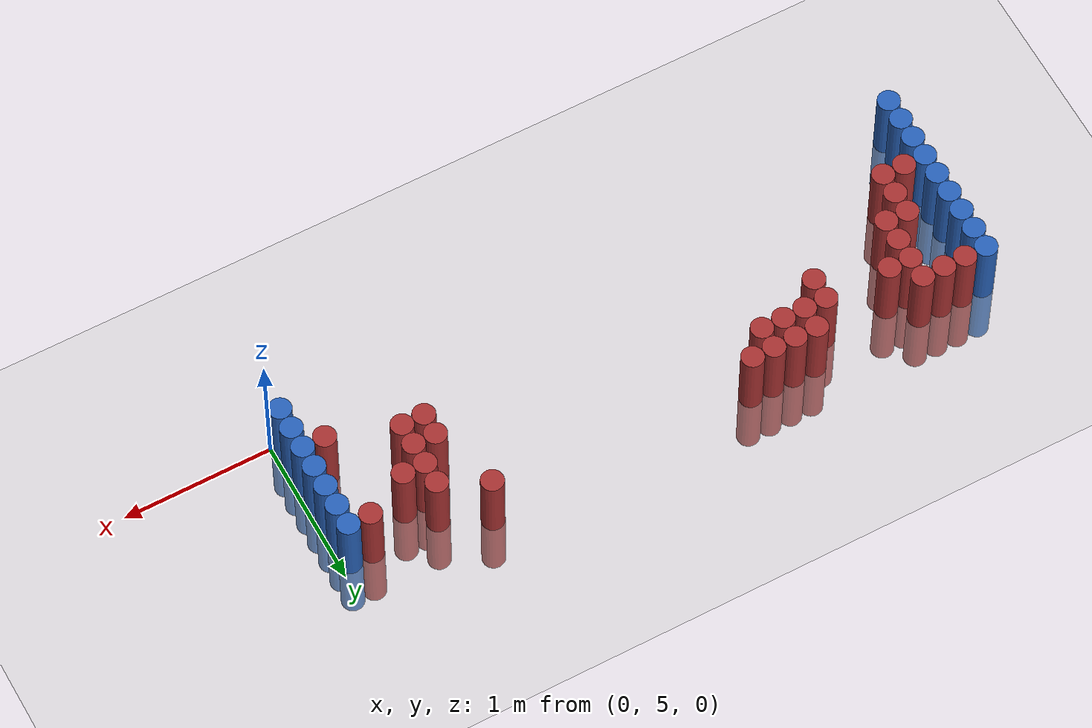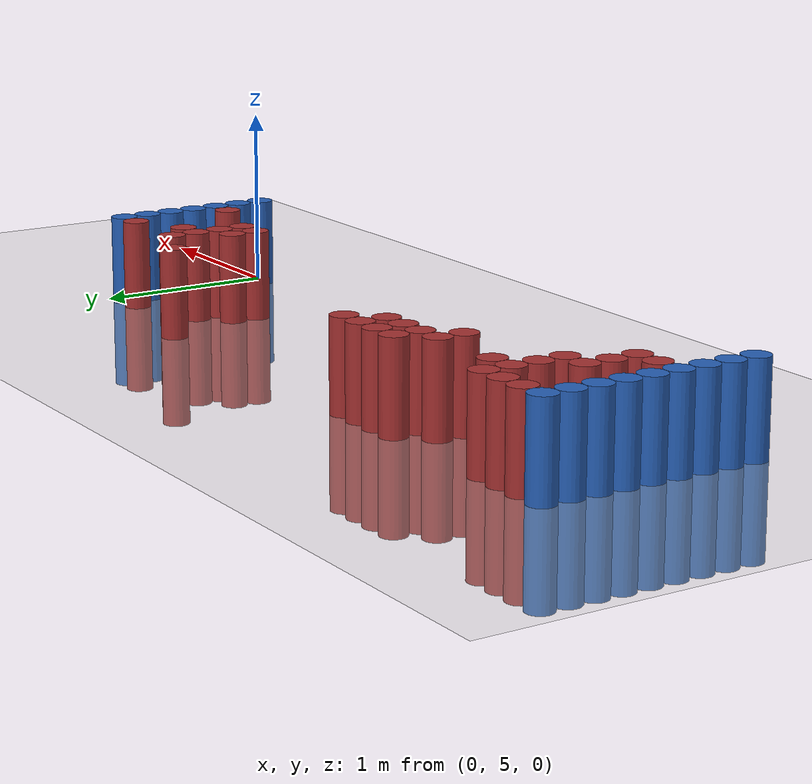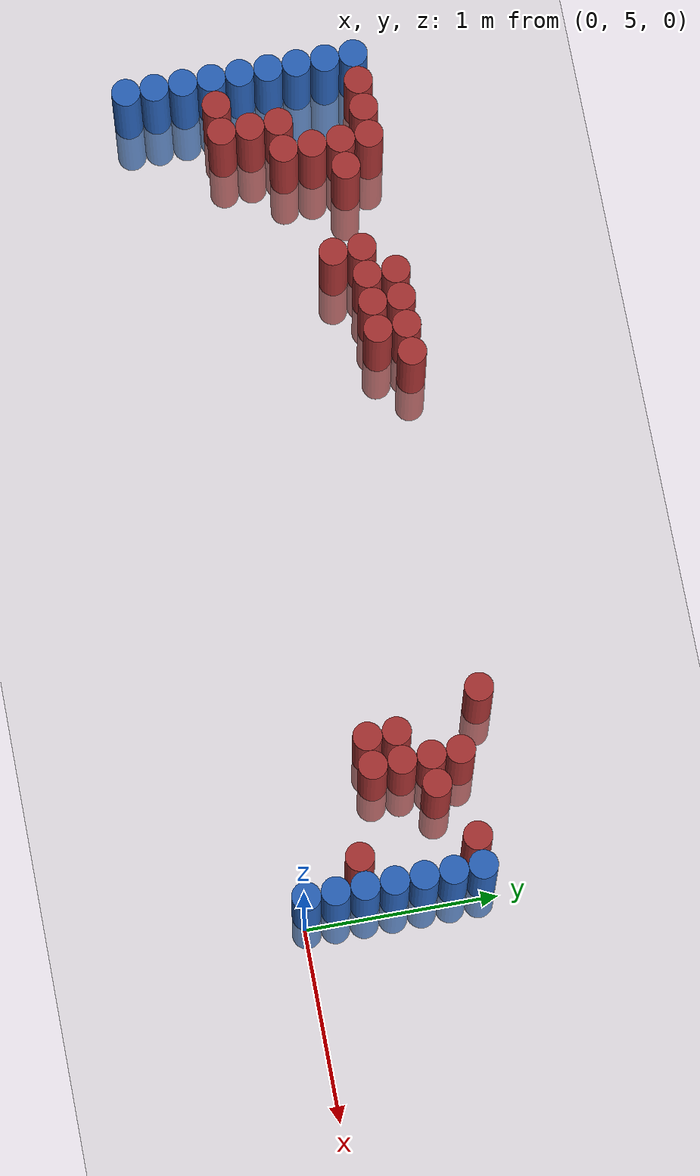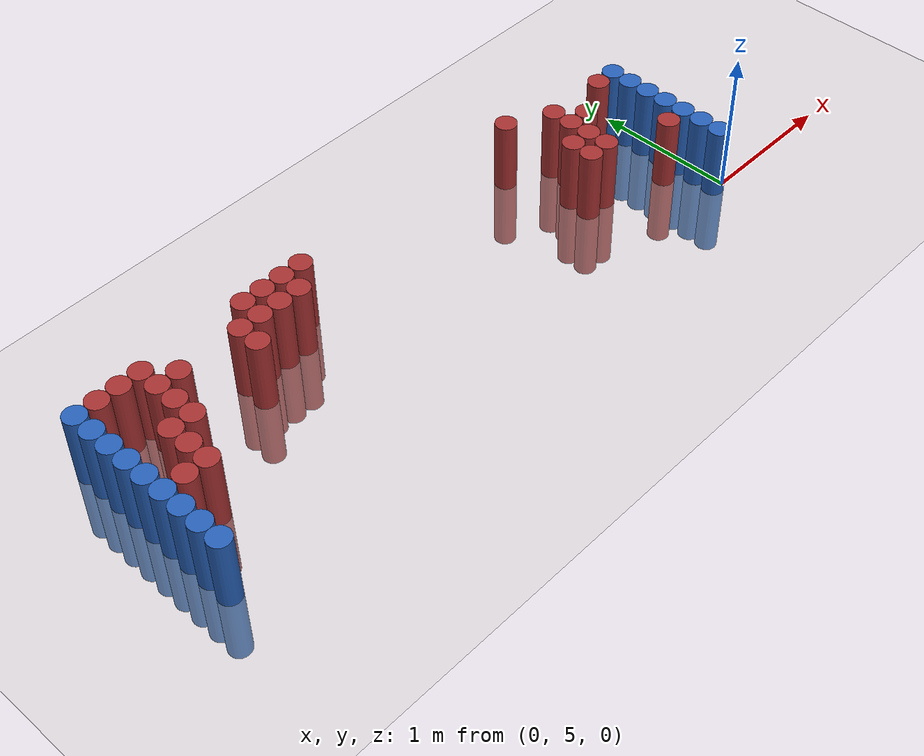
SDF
<sdf version="1.6">
 <world name="default">
  <model name="ground_plane">
   <static>1</static>
   <link name="link">
    <collision name="collision">
     <geometry><plane><normal>0 0 1</normal><size>100 100</size></plane></geometry>
     <surface><friction><ode><mu>100</mu><mu2>50</mu2></ode></friction></surface>
    </collision>
    <visual name="visual">
     <cast_shadows>0</cast_shadows>
     <geometry><plane><normal>0 0 1</normal><size>100 100</size></plane></geometry>
     <material>
      <script><uri>file://media/materials/scripts/gazebo.material</uri><name>Gazebo/Grey</name></script>
     </material>
    </visual>
   </link>
  </model>
  <model name="unit_cylinder_93">
   <static>1</static>
   <pose>-4.425000 4.875000 0.000000 0.000000 0.000000 0.000000</pose>
   <link name="link">
    <inertial>
     <mass>1</mass>
     <inertia><ixx>0.145833</ixx><ixy>0</ixy><ixz>0</ixz><iyy>0.145833</iyy><iyz>0</iyz><izz>0.125</izz></inertia>
    </inertial>
    <collision name="collision">
     <geometry><cylinder><radius>0.075000</radius><length>1</length></cylinder></geometry>
    </collision>
    <visual name="visual">
     <geometry><cylinder><radius>0.075000</radius><length>1</length></cylinder></geometry>
     <material>
      <ambient>0.152000 0.379000 0.720000 1</ambient>
      <diffuse>0.152000 0.379000 0.720000 1</diffuse>
     </material>
     <material>
      <script><name>Gazebo/Grey</name><uri>file://media/materials/scripts/gazebo.material</uri></script>
     </material>
    </visual>
   </link>
  </model>
  <model name="unit_cylinder_94">
   <static>1</static>
   <pose>-0.075000 5.025000 0.000000 0.000000 0.000000 0.000000</pose>
   <link name="link">
    <inertial>
     <mass>1</mass>
     <inertia><ixx>0.145833</ixx><ixy>0</ixy><ixz>0</ixz><iyy>0.145833</iyy><iyz>0</iyz><izz>0.125</izz></inertia>
    </inertial>
    <collision name="collision">
     <geometry><cylinder><radius>0.075000</radius><length>1</length></cylinder></geometry>
    </collision>
    <visual name="visual">
     <geometry><cylinder><radius>0.075000</radius><length>1</length></cylinder></geometry>
     <material>
      <ambient>0.152000 0.379000 0.720000 1</ambient>
      <diffuse>0.152000 0.379000 0.720000 1</diffuse>
     </material>
     <material>
      <script><name>Gazebo/Grey</name><uri>file://media/materials/scripts/gazebo.material</uri></script>
     </material>
    </visual>
   </link>
  </model>
  <model name="unit_cylinder_95">
   <static>1</static>
   <pose>-4.425000 5.025000 0.000000 0.000000 0.000000 0.000000</pose>
   <link name="link">
    <inertial>
     <mass>1</mass>
     <inertia><ixx>0.145833</ixx><ixy>0</ixy><ixz>0</ixz><iyy>0.145833</iyy><iyz>0</iyz><izz>0.125</izz></inertia>
    </inertial>
    <collision name="collision">
     <geometry><cylinder><radius>0.075000</radius><length>1</length></cylinder></geometry>
    </collision>
    <visual name="visual">
     <geometry><cylinder><radius>0.075000</radius><length>1</length></cylinder></geometry>
     <material>
      <ambient>0.152000 0.379000 0.720000 1</ambient>
      <diffuse>0.152000 0.379000 0.720000 1</diffuse>
     </material>
     <material>
      <script><name>Gazebo/Grey</name><uri>file://media/materials/scripts/gazebo.material</uri></script>
     </material>
    </visual>
   </link>
  </model>
  <model name="unit_cylinder_96">
   <static>1</static>
   <pose>-4.425000 5.175000 0.000000 0.000000 0.000000 0.000000</pose>
   <link name="link">
    <inertial>
     <mass>1</mass>
     <inertia><ixx>0.145833</ixx><ixy>0</ixy><ixz>0</ixz><iyy>0.145833</iyy><iyz>0</iyz><izz>0.125</izz></inertia>
    </inertial>
    <collision name="collision">
     <geometry><cylinder><radius>0.075000</radius><length>1</length></cylinder></geometry>
    </collision>
    <visual name="visual">
     <geometry><cylinder><radius>0.075000</radius><length>1</length></cylinder></geometry>
     <material>
      <ambient>0.152000 0.379000 0.720000 1</ambient>
      <diffuse>0.152000 0.379000 0.720000 1</diffuse>
     </material>
     <material>
      <script><name>Gazebo/Grey</name><uri>file://media/materials/scripts/gazebo.material</uri></script>
     </material>
    </visual>
   </link>
  </model>
  <model name="unit_cylinder_97">
   <static>1</static>
   <pose>-4.425000 5.325000 0.000000 0.000000 0.000000 0.000000</pose>
   <link name="link">
    <inertial>
     <mass>1</mass>
     <inertia><ixx>0.145833</ixx><ixy>0</ixy><ixz>0</ixz><iyy>0.145833</iyy><iyz>0</iyz><izz>0.125</izz></inertia>
    </inertial>
    <collision name="collision">
     <geometry><cylinder><radius>0.075000</radius><length>1</length></cylinder></geometry>
    </collision>
    <visual name="visual">
     <geometry><cylinder><radius>0.075000</radius><length>1</length></cylinder></geometry>
     <material>
      <ambient>0.152000 0.379000 0.720000 1</ambient>
      <diffuse>0.152000 0.379000 0.720000 1</diffuse>
     </material>
     <material>
      <script><name>Gazebo/Grey</name><uri>file://media/materials/scripts/gazebo.material</uri></script>
     </material>
    </visual>
   </link>
  </model>
  <model name="unit_cylinder_98">
   <static>1</static>
   <pose>-4.425000 5.475000 0.000000 0.000000 0.000000 0.000000</pose>
   <link name="link">
    <inertial>
     <mass>1</mass>
     <inertia><ixx>0.145833</ixx><ixy>0</ixy><ixz>0</ixz><iyy>0.145833</iyy><iyz>0</iyz><izz>0.125</izz></inertia>
    </inertial>
    <collision name="collision">
     <geometry><cylinder><radius>0.075000</radius><length>1</length></cylinder></geometry>
    </collision>
    <visual name="visual">
     <geometry><cylinder><radius>0.075000</radius><length>1</length></cylinder></geometry>
     <material>
      <ambient>0.152000 0.379000 0.720000 1</ambient>
      <diffuse>0.152000 0.379000 0.720000 1</diffuse>
     </material>
     <material>
      <script><name>Gazebo/Grey</name><uri>file://media/materials/scripts/gazebo.material</uri></script>
     </material>
    </visual>
   </link>
  </model>
  <model name="unit_cylinder_99">
   <static>1</static>
   <pose>-4.425000 5.625000 0.000000 0.000000 0.000000 0.000000</pose>
   <link name="link">
    <inertial>
     <mass>1</mass>
     <inertia><ixx>0.145833</ixx><ixy>0</ixy><ixz>0</ixz><iyy>0.145833</iyy><iyz>0</iyz><izz>0.125</izz></inertia>
    </inertial>
    <collision name="collision">
     <geometry><cylinder><radius>0.075000</radius><length>1</length></cylinder></geometry>
    </collision>
    <visual name="visual">
     <geometry><cylinder><radius>0.075000</radius><length>1</length></cylinder></geometry>
     <material>
      <ambient>0.152000 0.379000 0.720000 1</ambient>
      <diffuse>0.152000 0.379000 0.720000 1</diffuse>
     </material>
     <material>
      <script><name>Gazebo/Grey</name><uri>file://media/materials/scripts/gazebo.material</uri></script>
     </material>
    </visual>
   </link>
  </model>
  <model name="unit_cylinder_100">
   <static>1</static>
   <pose>-4.425000 5.775000 0.000000 0.000000 0.000000 0.000000</pose>
   <link name="link">
    <inertial>
     <mass>1</mass>
     <inertia><ixx>0.145833</ixx><ixy>0</ixy><ixz>0</ixz><iyy>0.145833</iyy><iyz>0</iyz><izz>0.125</izz></inertia>
    </inertial>
    <collision name="collision">
     <geometry><cylinder><radius>0.075000</radius><length>1</length></cylinder></geometry>
    </collision>
    <visual name="visual">
     <geometry><cylinder><radius>0.075000</radius><length>1</length></cylinder></geometry>
     <material>
      <ambient>0.152000 0.379000 0.720000 1</ambient>
      <diffuse>0.152000 0.379000 0.720000 1</diffuse>
     </material>
     <material>
      <script><name>Gazebo/Grey</name><uri>file://media/materials/scripts/gazebo.material</uri></script>
     </material>
    </visual>
   </link>
  </model>
  <model name="unit_cylinder_101">
   <static>1</static>
   <pose>-4.425000 5.925000 0.000000 0.000000 0.000000 0.000000</pose>
   <link name="link">
    <inertial>
     <mass>1</mass>
     <inertia><ixx>0.145833</ixx><ixy>0</ixy><ixz>0</ixz><iyy>0.145833</iyy><iyz>0</iyz><izz>0.125</izz></inertia>
    </inertial>
    <collision name="collision">
     <geometry><cylinder><radius>0.075000</radius><length>1</length></cylinder></geometry>
    </collision>
    <visual name="visual">
     <geometry><cylinder><radius>0.075000</radius><length>1</length></cylinder></geometry>
     <material>
      <ambient>0.152000 0.379000 0.720000 1</ambient>
      <diffuse>0.152000 0.379000 0.720000 1</diffuse>
     </material>
     <material>
      <script><name>Gazebo/Grey</name><uri>file://media/materials/scripts/gazebo.material</uri></script>
     </material>
    </visual>
   </link>
  </model>
  <model name="unit_cylinder_102">
   <static>1</static>
   <pose>-4.425000 6.075000 0.000000 0.000000 0.000000 0.000000</pose>
   <link name="link">
    <inertial>
     <mass>1</mass>
     <inertia><ixx>0.145833</ixx><ixy>0</ixy><ixz>0</ixz><iyy>0.145833</iyy><iyz>0</iyz><izz>0.125</izz></inertia>
    </inertial>
    <collision name="collision">
     <geometry><cylinder><radius>0.075000</radius><length>1</length></cylinder></geometry>
    </collision>
    <visual name="visual">
     <geometry><cylinder><radius>0.075000</radius><length>1</length></cylinder></geometry>
     <material>
      <ambient>0.152000 0.379000 0.720000 1</ambient>
      <diffuse>0.152000 0.379000 0.720000 1</diffuse>
     </material>
     <material>
      <script><name>Gazebo/Grey</name><uri>file://media/materials/scripts/gazebo.material</uri></script>
     </material>
    </visual>
   </link>
  </model>
  <model name="unit_cylinder_126">
   <static>1</static>
   <pose>-4.275000 5.325000 0.000000 0.000000 0.000000 0.000000</pose>
   <link name="link">
    <inertial>
     <mass>1</mass>
     <inertia><ixx>0.145833</ixx><ixy>0</ixy><ixz>0</ixz><iyy>0.145833</iyy><iyz>0</iyz><izz>0.125</izz></inertia>
    </inertial>
    <collision name="collision">
     <geometry><cylinder><radius>0.075000</radius><length>1</length></cylinder></geometry>
    </collision>
    <visual name="visual">
     <geometry><cylinder><radius>0.075000</radius><length>1</length></cylinder></geometry>
     <material>
      <ambient>0.648000 0.192000 0.192000 1</ambient>
      <diffuse>0.648000 0.192000 0.192000 1</diffuse>
     </material>
     <material>
      <script><name>Gazebo/Grey</name><uri>file://media/materials/scripts/gazebo.material</uri></script>
     </material>
    </visual>
   </link>
  </model>
  <model name="unit_cylinder_127">
   <static>1</static>
   <pose>-4.275000 6.075000 0.000000 0.000000 0.000000 0.000000</pose>
   <link name="link">
    <inertial>
     <mass>1</mass>
     <inertia><ixx>0.145833</ixx><ixy>0</ixy><ixz>0</ixz><iyy>0.145833</iyy><iyz>0</iyz><izz>0.125</izz></inertia>
    </inertial>
    <collision name="collision">
     <geometry><cylinder><radius>0.075000</radius><length>1</length></cylinder></geometry>
    </collision>
    <visual name="visual">
     <geometry><cylinder><radius>0.075000</radius><length>1</length></cylinder></geometry>
     <material>
      <ambient>0.648000 0.192000 0.192000 1</ambient>
      <diffuse>0.648000 0.192000 0.192000 1</diffuse>
     </material>
     <material>
      <script><name>Gazebo/Grey</name><uri>file://media/materials/scripts/gazebo.material</uri></script>
     </material>
    </visual>
   </link>
  </model>
  <model name="unit_cylinder_134">
   <static>1</static>
   <pose>-4.125000 5.325000 0.000000 0.000000 0.000000 0.000000</pose>
   <link name="link">
    <inertial>
     <mass>1</mass>
     <inertia><ixx>0.145833</ixx><ixy>0</ixy><ixz>0</ixz><iyy>0.145833</iyy><iyz>0</iyz><izz>0.125</izz></inertia>
    </inertial>
    <collision name="collision">
     <geometry><cylinder><radius>0.075000</radius><length>1</length></cylinder></geometry>
    </collision>
    <visual name="visual">
     <geometry><cylinder><radius>0.075000</radius><length>1</length></cylinder></geometry>
     <material>
      <ambient>0.648000 0.192000 0.192000 1</ambient>
      <diffuse>0.648000 0.192000 0.192000 1</diffuse>
     </material>
     <material>
      <script><name>Gazebo/Grey</name><uri>file://media/materials/scripts/gazebo.material</uri></script>
     </material>
    </visual>
   </link>
  </model>
  <model name="unit_cylinder_135">
   <static>1</static>
   <pose>-4.125000 5.475000 0.000000 0.000000 0.000000 0.000000</pose>
   <link name="link">
    <inertial>
     <mass>1</mass>
     <inertia><ixx>0.145833</ixx><ixy>0</ixy><ixz>0</ixz><iyy>0.145833</iyy><iyz>0</iyz><izz>0.125</izz></inertia>
    </inertial>
    <collision name="collision">
     <geometry><cylinder><radius>0.075000</radius><length>1</length></cylinder></geometry>
    </collision>
    <visual name="visual">
     <geometry><cylinder><radius>0.075000</radius><length>1</length></cylinder></geometry>
     <material>
      <ambient>0.648000 0.192000 0.192000 1</ambient>
      <diffuse>0.648000 0.192000 0.192000 1</diffuse>
     </material>
     <material>
      <script><name>Gazebo/Grey</name><uri>file://media/materials/scripts/gazebo.material</uri></script>
     </material>
    </visual>
   </link>
  </model>
  <model name="unit_cylinder_136">
   <static>1</static>
   <pose>-4.125000 5.625000 0.000000 0.000000 0.000000 0.000000</pose>
   <link name="link">
    <inertial>
     <mass>1</mass>
     <inertia><ixx>0.145833</ixx><ixy>0</ixy><ixz>0</ixz><iyy>0.145833</iyy><iyz>0</iyz><izz>0.125</izz></inertia>
    </inertial>
    <collision name="collision">
     <geometry><cylinder><radius>0.075000</radius><length>1</length></cylinder></geometry>
    </collision>
    <visual name="visual">
     <geometry><cylinder><radius>0.075000</radius><length>1</length></cylinder></geometry>
     <material>
      <ambient>0.648000 0.192000 0.192000 1</ambient>
      <diffuse>0.648000 0.192000 0.192000 1</diffuse>
     </material>
     <material>
      <script><name>Gazebo/Grey</name><uri>file://media/materials/scripts/gazebo.material</uri></script>
     </material>
    </visual>
   </link>
  </model>
  <model name="unit_cylinder_137">
   <static>1</static>
   <pose>-4.125000 6.075000 0.000000 0.000000 0.000000 0.000000</pose>
   <link name="link">
    <inertial>
     <mass>1</mass>
     <inertia><ixx>0.145833</ixx><ixy>0</ixy><ixz>0</ixz><iyy>0.145833</iyy><iyz>0</iyz><izz>0.125</izz></inertia>
    </inertial>
    <collision name="collision">
     <geometry><cylinder><radius>0.075000</radius><length>1</length></cylinder></geometry>
    </collision>
    <visual name="visual">
     <geometry><cylinder><radius>0.075000</radius><length>1</length></cylinder></geometry>
     <material>
      <ambient>0.648000 0.192000 0.192000 1</ambient>
      <diffuse>0.648000 0.192000 0.192000 1</diffuse>
     </material>
     <material>
      <script><name>Gazebo/Grey</name><uri>file://media/materials/scripts/gazebo.material</uri></script>
     </material>
    </visual>
   </link>
  </model>
  <model name="unit_cylinder_142">
   <static>1</static>
   <pose>-3.975000 5.625000 0.000000 0.000000 0.000000 0.000000</pose>
   <link name="link">
    <inertial>
     <mass>1</mass>
     <inertia><ixx>0.145833</ixx><ixy>0</ixy><ixz>0</ixz><iyy>0.145833</iyy><iyz>0</iyz><izz>0.125</izz></inertia>
    </inertial>
    <collision name="collision">
     <geometry><cylinder><radius>0.075000</radius><length>1</length></cylinder></geometry>
    </collision>
    <visual name="visual">
     <geometry><cylinder><radius>0.075000</radius><length>1</length></cylinder></geometry>
     <material>
      <ambient>0.648000 0.192000 0.192000 1</ambient>
      <diffuse>0.648000 0.192000 0.192000 1</diffuse>
     </material>
     <material>
      <script><name>Gazebo/Grey</name><uri>file://media/materials/scripts/gazebo.material</uri></script>
     </material>
    </visual>
   </link>
  </model>
  <model name="unit_cylinder_143">
   <static>1</static>
   <pose>-3.975000 5.775000 0.000000 0.000000 0.000000 0.000000</pose>
   <link name="link">
    <inertial>
     <mass>1</mass>
     <inertia><ixx>0.145833</ixx><ixy>0</ixy><ixz>0</ixz><iyy>0.145833</iyy><iyz>0</iyz><izz>0.125</izz></inertia>
    </inertial>
    <collision name="collision">
     <geometry><cylinder><radius>0.075000</radius><length>1</length></cylinder></geometry>
    </collision>
    <visual name="visual">
     <geometry><cylinder><radius>0.075000</radius><length>1</length></cylinder></geometry>
     <material>
      <ambient>0.648000 0.192000 0.192000 1</ambient>
      <diffuse>0.648000 0.192000 0.192000 1</diffuse>
     </material>
     <material>
      <script><name>Gazebo/Grey</name><uri>file://media/materials/scripts/gazebo.material</uri></script>
     </material>
    </visual>
   </link>
  </model>
  <model name="unit_cylinder_144">
   <static>1</static>
   <pose>-3.975000 5.925000 0.000000 0.000000 0.000000 0.000000</pose>
   <link name="link">
    <inertial>
     <mass>1</mass>
     <inertia><ixx>0.145833</ixx><ixy>0</ixy><ixz>0</ixz><iyy>0.145833</iyy><iyz>0</iyz><izz>0.125</izz></inertia>
    </inertial>
    <collision name="collision">
     <geometry><cylinder><radius>0.075000</radius><length>1</length></cylinder></geometry>
    </collision>
    <visual name="visual">
     <geometry><cylinder><radius>0.075000</radius><length>1</length></cylinder></geometry>
     <material>
      <ambient>0.648000 0.192000 0.192000 1</ambient>
      <diffuse>0.648000 0.192000 0.192000 1</diffuse>
     </material>
     <material>
      <script><name>Gazebo/Grey</name><uri>file://media/materials/scripts/gazebo.material</uri></script>
     </material>
    </visual>
   </link>
  </model>
  <model name="unit_cylinder_145">
   <static>1</static>
   <pose>-3.975000 6.075000 0.000000 0.000000 0.000000 0.000000</pose>
   <link name="link">
    <inertial>
     <mass>1</mass>
     <inertia><ixx>0.145833</ixx><ixy>0</ixy><ixz>0</ixz><iyy>0.145833</iyy><iyz>0</iyz><izz>0.125</izz></inertia>
    </inertial>
    <collision name="collision">
     <geometry><cylinder><radius>0.075000</radius><length>1</length></cylinder></geometry>
    </collision>
    <visual name="visual">
     <geometry><cylinder><radius>0.075000</radius><length>1</length></cylinder></geometry>
     <material>
      <ambient>0.648000 0.192000 0.192000 1</ambient>
      <diffuse>0.648000 0.192000 0.192000 1</diffuse>
     </material>
     <material>
      <script><name>Gazebo/Grey</name><uri>file://media/materials/scripts/gazebo.material</uri></script>
     </material>
    </visual>
   </link>
  </model>
  <model name="unit_cylinder_148">
   <static>1</static>
   <pose>-3.825000 5.925000 0.000000 0.000000 0.000000 0.000000</pose>
   <link name="link">
    <inertial>
     <mass>1</mass>
     <inertia><ixx>0.145833</ixx><ixy>0</ixy><ixz>0</ixz><iyy>0.145833</iyy><iyz>0</iyz><izz>0.125</izz></inertia>
    </inertial>
    <collision name="collision">
     <geometry><cylinder><radius>0.075000</radius><length>1</length></cylinder></geometry>
    </collision>
    <visual name="visual">
     <geometry><cylinder><radius>0.075000</radius><length>1</length></cylinder></geometry>
     <material>
      <ambient>0.648000 0.192000 0.192000 1</ambient>
      <diffuse>0.648000 0.192000 0.192000 1</diffuse>
     </material>
     <material>
      <script><name>Gazebo/Grey</name><uri>file://media/materials/scripts/gazebo.material</uri></script>
     </material>
    </visual>
   </link>
  </model>
  <model name="unit_cylinder_154">
   <static>1</static>
   <pose>-3.375000 5.775000 0.000000 0.000000 0.000000 0.000000</pose>
   <link name="link">
    <inertial>
     <mass>1</mass>
     <inertia><ixx>0.145833</ixx><ixy>0</ixy><ixz>0</ixz><iyy>0.145833</iyy><iyz>0</iyz><izz>0.125</izz></inertia>
    </inertial>
    <collision name="collision">
     <geometry><cylinder><radius>0.075000</radius><length>1</length></cylinder></geometry>
    </collision>
    <visual name="visual">
     <geometry><cylinder><radius>0.075000</radius><length>1</length></cylinder></geometry>
     <material>
      <ambient>0.648000 0.192000 0.192000 1</ambient>
      <diffuse>0.648000 0.192000 0.192000 1</diffuse>
     </material>
     <material>
      <script><name>Gazebo/Grey</name><uri>file://media/materials/scripts/gazebo.material</uri></script>
     </material>
    </visual>
   </link>
  </model>
  <model name="unit_cylinder_155">
   <static>1</static>
   <pose>-3.375000 5.925000 0.000000 0.000000 0.000000 0.000000</pose>
   <link name="link">
    <inertial>
     <mass>1</mass>
     <inertia><ixx>0.145833</ixx><ixy>0</ixy><ixz>0</ixz><iyy>0.145833</iyy><iyz>0</iyz><izz>0.125</izz></inertia>
    </inertial>
    <collision name="collision">
     <geometry><cylinder><radius>0.075000</radius><length>1</length></cylinder></geometry>
    </collision>
    <visual name="visual">
     <geometry><cylinder><radius>0.075000</radius><length>1</length></cylinder></geometry>
     <material>
      <ambient>0.648000 0.192000 0.192000 1</ambient>
      <diffuse>0.648000 0.192000 0.192000 1</diffuse>
     </material>
     <material>
      <script><name>Gazebo/Grey</name><uri>file://media/materials/scripts/gazebo.material</uri></script>
     </material>
    </visual>
   </link>
  </model>
  <model name="unit_cylinder_156">
   <static>1</static>
   <pose>-3.225000 5.925000 0.000000 0.000000 0.000000 0.000000</pose>
   <link name="link">
    <inertial>
     <mass>1</mass>
     <inertia><ixx>0.145833</ixx><ixy>0</ixy><ixz>0</ixz><iyy>0.145833</iyy><iyz>0</iyz><izz>0.125</izz></inertia>
    </inertial>
    <collision name="collision">
     <geometry><cylinder><radius>0.075000</radius><length>1</length></cylinder></geometry>
    </collision>
    <visual name="visual">
     <geometry><cylinder><radius>0.075000</radius><length>1</length></cylinder></geometry>
     <material>
      <ambient>0.648000 0.192000 0.192000 1</ambient>
      <diffuse>0.648000 0.192000 0.192000 1</diffuse>
     </material>
     <material>
      <script><name>Gazebo/Grey</name><uri>file://media/materials/scripts/gazebo.material</uri></script>
     </material>
    </visual>
   </link>
  </model>
  <model name="unit_cylinder_157">
   <static>1</static>
   <pose>-3.225000 6.075000 0.000000 0.000000 0.000000 0.000000</pose>
   <link name="link">
    <inertial>
     <mass>1</mass>
     <inertia><ixx>0.145833</ixx><ixy>0</ixy><ixz>0</ixz><iyy>0.145833</iyy><iyz>0</iyz><izz>0.125</izz></inertia>
    </inertial>
    <collision name="collision">
     <geometry><cylinder><radius>0.075000</radius><length>1</length></cylinder></geometry>
    </collision>
    <visual name="visual">
     <geometry><cylinder><radius>0.075000</radius><length>1</length></cylinder></geometry>
     <material>
      <ambient>0.648000 0.192000 0.192000 1</ambient>
      <diffuse>0.648000 0.192000 0.192000 1</diffuse>
     </material>
     <material>
      <script><name>Gazebo/Grey</name><uri>file://media/materials/scripts/gazebo.material</uri></script>
     </material>
    </visual>
   </link>
  </model>
  <model name="unit_cylinder_159">
   <static>1</static>
   <pose>-3.075000 5.925000 0.000000 0.000000 0.000000 0.000000</pose>
   <link name="link">
    <inertial>
     <mass>1</mass>
     <inertia><ixx>0.145833</ixx><ixy>0</ixy><ixz>0</ixz><iyy>0.145833</iyy><iyz>0</iyz><izz>0.125</izz></inertia>
    </inertial>
    <collision name="collision">
     <geometry><cylinder><radius>0.075000</radius><length>1</length></cylinder></geometry>
    </collision>
    <visual name="visual">
     <geometry><cylinder><radius>0.075000</radius><length>1</length></cylinder></geometry>
     <material>
      <ambient>0.648000 0.192000 0.192000 1</ambient>
      <diffuse>0.648000 0.192000 0.192000 1</diffuse>
     </material>
     <material>
      <script><name>Gazebo/Grey</name><uri>file://media/materials/scripts/gazebo.material</uri></script>
     </material>
    </visual>
   </link>
  </model>
  <model name="unit_cylinder_160">
   <static>1</static>
   <pose>-3.075000 6.075000 0.000000 0.000000 0.000000 0.000000</pose>
   <link name="link">
    <inertial>
     <mass>1</mass>
     <inertia><ixx>0.145833</ixx><ixy>0</ixy><ixz>0</ixz><iyy>0.145833</iyy><iyz>0</iyz><izz>0.125</izz></inertia>
    </inertial>
    <collision name="collision">
     <geometry><cylinder><radius>0.075000</radius><length>1</length></cylinder></geometry>
    </collision>
    <visual name="visual">
     <geometry><cylinder><radius>0.075000</radius><length>1</length></cylinder></geometry>
     <material>
      <ambient>0.648000 0.192000 0.192000 1</ambient>
      <diffuse>0.648000 0.192000 0.192000 1</diffuse>
     </material>
     <material>
      <script><name>Gazebo/Grey</name><uri>file://media/materials/scripts/gazebo.material</uri></script>
     </material>
    </visual>
   </link>
  </model>
  <model name="unit_cylinder_164">
   <static>1</static>
   <pose>-2.925000 5.925000 0.000000 0.000000 0.000000 0.000000</pose>
   <link name="link">
    <inertial>
     <mass>1</mass>
     <inertia><ixx>0.145833</ixx><ixy>0</ixy><ixz>0</ixz><iyy>0.145833</iyy><iyz>0</iyz><izz>0.125</izz></inertia>
    </inertial>
    <collision name="collision">
     <geometry><cylinder><radius>0.075000</radius><length>1</length></cylinder></geometry>
    </collision>
    <visual name="visual">
     <geometry><cylinder><radius>0.075000</radius><length>1</length></cylinder></geometry>
     <material>
      <ambient>0.648000 0.192000 0.192000 1</ambient>
      <diffuse>0.648000 0.192000 0.192000 1</diffuse>
     </material>
     <material>
      <script><name>Gazebo/Grey</name><uri>file://media/materials/scripts/gazebo.material</uri></script>
     </material>
    </visual>
   </link>
  </model>
  <model name="unit_cylinder_165">
   <static>1</static>
   <pose>-2.925000 6.075000 0.000000 0.000000 0.000000 0.000000</pose>
   <link name="link">
    <inertial>
     <mass>1</mass>
     <inertia><ixx>0.145833</ixx><ixy>0</ixy><ixz>0</ixz><iyy>0.145833</iyy><iyz>0</iyz><izz>0.125</izz></inertia>
    </inertial>
    <collision name="collision">
     <geometry><cylinder><radius>0.075000</radius><length>1</length></cylinder></geometry>
    </collision>
    <visual name="visual">
     <geometry><cylinder><radius>0.075000</radius><length>1</length></cylinder></geometry>
     <material>
      <ambient>0.648000 0.192000 0.192000 1</ambient>
      <diffuse>0.648000 0.192000 0.192000 1</diffuse>
     </material>
     <material>
      <script><name>Gazebo/Grey</name><uri>file://media/materials/scripts/gazebo.material</uri></script>
     </material>
    </visual>
   </link>
  </model>
  <model name="unit_cylinder_169">
   <static>1</static>
   <pose>-2.775000 6.075000 0.000000 0.000000 0.000000 0.000000</pose>
   <link name="link">
    <inertial>
     <mass>1</mass>
     <inertia><ixx>0.145833</ixx><ixy>0</ixy><ixz>0</ixz><iyy>0.145833</iyy><iyz>0</iyz><izz>0.125</izz></inertia>
    </inertial>
    <collision name="collision">
     <geometry><cylinder><radius>0.075000</radius><length>1</length></cylinder></geometry>
    </collision>
    <visual name="visual">
     <geometry><cylinder><radius>0.075000</radius><length>1</length></cylinder></geometry>
     <material>
      <ambient>0.648000 0.192000 0.192000 1</ambient>
      <diffuse>0.648000 0.192000 0.192000 1</diffuse>
     </material>
     <material>
      <script><name>Gazebo/Grey</name><uri>file://media/materials/scripts/gazebo.material</uri></script>
     </material>
    </visual>
   </link>
  </model>
  <model name="unit_cylinder_178">
   <static>1</static>
   <pose>-0.975000 6.075000 0.000000 0.000000 0.000000 0.000000</pose>
   <link name="link">
    <inertial>
     <mass>1</mass>
     <inertia><ixx>0.145833</ixx><ixy>0</ixy><ixz>0</ixz><iyy>0.145833</iyy><iyz>0</iyz><izz>0.125</izz></inertia>
    </inertial>
    <collision name="collision">
     <geometry><cylinder><radius>0.075000</radius><length>1</length></cylinder></geometry>
    </collision>
    <visual name="visual">
     <geometry><cylinder><radius>0.075000</radius><length>1</length></cylinder></geometry>
     <material>
      <ambient>0.648000 0.192000 0.192000 1</ambient>
      <diffuse>0.648000 0.192000 0.192000 1</diffuse>
     </material>
     <material>
      <script><name>Gazebo/Grey</name><uri>file://media/materials/scripts/gazebo.material</uri></script>
     </material>
    </visual>
   </link>
  </model>
  <model name="unit_cylinder_180">
   <static>1</static>
   <pose>-0.825000 5.475000 0.000000 0.000000 0.000000 0.000000</pose>
   <link name="link">
    <inertial>
     <mass>1</mass>
     <inertia><ixx>0.145833</ixx><ixy>0</ixy><ixz>0</ixz><iyy>0.145833</iyy><iyz>0</iyz><izz>0.125</izz></inertia>
    </inertial>
    <collision name="collision">
     <geometry><cylinder><radius>0.075000</radius><length>1</length></cylinder></geometry>
    </collision>
    <visual name="visual">
     <geometry><cylinder><radius>0.075000</radius><length>1</length></cylinder></geometry>
     <material>
      <ambient>0.648000 0.192000 0.192000 1</ambient>
      <diffuse>0.648000 0.192000 0.192000 1</diffuse>
     </material>
     <material>
      <script><name>Gazebo/Grey</name><uri>file://media/materials/scripts/gazebo.material</uri></script>
     </material>
    </visual>
   </link>
  </model>
  <model name="unit_cylinder_181">
   <static>1</static>
   <pose>-0.825000 5.625000 0.000000 0.000000 0.000000 0.000000</pose>
   <link name="link">
    <inertial>
     <mass>1</mass>
     <inertia><ixx>0.145833</ixx><ixy>0</ixy><ixz>0</ixz><iyy>0.145833</iyy><iyz>0</iyz><izz>0.125</izz></inertia>
    </inertial>
    <collision name="collision">
     <geometry><cylinder><radius>0.075000</radius><length>1</length></cylinder></geometry>
    </collision>
    <visual name="visual">
     <geometry><cylinder><radius>0.075000</radius><length>1</length></cylinder></geometry>
     <material>
      <ambient>0.648000 0.192000 0.192000 1</ambient>
      <diffuse>0.648000 0.192000 0.192000 1</diffuse>
     </material>
     <material>
      <script><name>Gazebo/Grey</name><uri>file://media/materials/scripts/gazebo.material</uri></script>
     </material>
    </visual>
   </link>
  </model>
  <model name="unit_cylinder_184">
   <static>1</static>
   <pose>-0.675000 5.475000 0.000000 0.000000 0.000000 0.000000</pose>
   <link name="link">
    <inertial>
     <mass>1</mass>
     <inertia><ixx>0.145833</ixx><ixy>0</ixy><ixz>0</ixz><iyy>0.145833</iyy><iyz>0</iyz><izz>0.125</izz></inertia>
    </inertial>
    <collision name="collision">
     <geometry><cylinder><radius>0.075000</radius><length>1</length></cylinder></geometry>
    </collision>
    <visual name="visual">
     <geometry><cylinder><radius>0.075000</radius><length>1</length></cylinder></geometry>
     <material>
      <ambient>0.648000 0.192000 0.192000 1</ambient>
      <diffuse>0.648000 0.192000 0.192000 1</diffuse>
     </material>
     <material>
      <script><name>Gazebo/Grey</name><uri>file://media/materials/scripts/gazebo.material</uri></script>
     </material>
    </visual>
   </link>
  </model>
  <model name="unit_cylinder_185">
   <static>1</static>
   <pose>-0.675000 5.625000 0.000000 0.000000 0.000000 0.000000</pose>
   <link name="link">
    <inertial>
     <mass>1</mass>
     <inertia><ixx>0.145833</ixx><ixy>0</ixy><ixz>0</ixz><iyy>0.145833</iyy><iyz>0</iyz><izz>0.125</izz></inertia>
    </inertial>
    <collision name="collision">
     <geometry><cylinder><radius>0.075000</radius><length>1</length></cylinder></geometry>
    </collision>
    <visual name="visual">
     <geometry><cylinder><radius>0.075000</radius><length>1</length></cylinder></geometry>
     <material>
      <ambient>0.648000 0.192000 0.192000 1</ambient>
      <diffuse>0.648000 0.192000 0.192000 1</diffuse>
     </material>
     <material>
      <script><name>Gazebo/Grey</name><uri>file://media/materials/scripts/gazebo.material</uri></script>
     </material>
    </visual>
   </link>
  </model>
  <model name="unit_cylinder_186">
   <static>1</static>
   <pose>-0.675000 5.775000 0.000000 0.000000 0.000000 0.000000</pose>
   <link name="link">
    <inertial>
     <mass>1</mass>
     <inertia><ixx>0.145833</ixx><ixy>0</ixy><ixz>0</ixz><iyy>0.145833</iyy><iyz>0</iyz><izz>0.125</izz></inertia>
    </inertial>
    <collision name="collision">
     <geometry><cylinder><radius>0.075000</radius><length>1</length></cylinder></geometry>
    </collision>
    <visual name="visual">
     <geometry><cylinder><radius>0.075000</radius><length>1</length></cylinder></geometry>
     <material>
      <ambient>0.648000 0.192000 0.192000 1</ambient>
      <diffuse>0.648000 0.192000 0.192000 1</diffuse>
     </material>
     <material>
      <script><name>Gazebo/Grey</name><uri>file://media/materials/scripts/gazebo.material</uri></script>
     </material>
    </visual>
   </link>
  </model>
  <model name="unit_cylinder_187">
   <static>1</static>
   <pose>-0.675000 5.925000 0.000000 0.000000 0.000000 0.000000</pose>
   <link name="link">
    <inertial>
     <mass>1</mass>
     <inertia><ixx>0.145833</ixx><ixy>0</ixy><ixz>0</ixz><iyy>0.145833</iyy><iyz>0</iyz><izz>0.125</izz></inertia>
    </inertial>
    <collision name="collision">
     <geometry><cylinder><radius>0.075000</radius><length>1</length></cylinder></geometry>
    </collision>
    <visual name="visual">
     <geometry><cylinder><radius>0.075000</radius><length>1</length></cylinder></geometry>
     <material>
      <ambient>0.648000 0.192000 0.192000 1</ambient>
      <diffuse>0.648000 0.192000 0.192000 1</diffuse>
     </material>
     <material>
      <script><name>Gazebo/Grey</name><uri>file://media/materials/scripts/gazebo.material</uri></script>
     </material>
    </visual>
   </link>
  </model>
  <model name="unit_cylinder_189">
   <static>1</static>
   <pose>-0.525000 5.775000 0.000000 0.000000 0.000000 0.000000</pose>
   <link name="link">
    <inertial>
     <mass>1</mass>
     <inertia><ixx>0.145833</ixx><ixy>0</ixy><ixz>0</ixz><iyy>0.145833</iyy><iyz>0</iyz><izz>0.125</izz></inertia>
    </inertial>
    <collision name="collision">
     <geometry><cylinder><radius>0.075000</radius><length>1</length></cylinder></geometry>
    </collision>
    <visual name="visual">
     <geometry><cylinder><radius>0.075000</radius><length>1</length></cylinder></geometry>
     <material>
      <ambient>0.648000 0.192000 0.192000 1</ambient>
      <diffuse>0.648000 0.192000 0.192000 1</diffuse>
     </material>
     <material>
      <script><name>Gazebo/Grey</name><uri>file://media/materials/scripts/gazebo.material</uri></script>
     </material>
    </visual>
   </link>
  </model>
  <model name="unit_cylinder_191">
   <static>1</static>
   <pose>-0.225000 5.325000 0.000000 0.000000 0.000000 0.000000</pose>
   <link name="link">
    <inertial>
     <mass>1</mass>
     <inertia><ixx>0.145833</ixx><ixy>0</ixy><ixz>0</ixz><iyy>0.145833</iyy><iyz>0</iyz><izz>0.125</izz></inertia>
    </inertial>
    <collision name="collision">
     <geometry><cylinder><radius>0.075000</radius><length>1</length></cylinder></geometry>
    </collision>
    <visual name="visual">
     <geometry><cylinder><radius>0.075000</radius><length>1</length></cylinder></geometry>
     <material>
      <ambient>0.648000 0.192000 0.192000 1</ambient>
      <diffuse>0.648000 0.192000 0.192000 1</diffuse>
     </material>
     <material>
      <script><name>Gazebo/Grey</name><uri>file://media/materials/scripts/gazebo.material</uri></script>
     </material>
    </visual>
   </link>
  </model>
  <model name="unit_cylinder_192">
   <static>1</static>
   <pose>-0.225000 5.925000 0.000000 0.000000 0.000000 0.000000</pose>
   <link name="link">
    <inertial>
     <mass>1</mass>
     <inertia><ixx>0.145833</ixx><ixy>0</ixy><ixz>0</ixz><iyy>0.145833</iyy><iyz>0</iyz><izz>0.125</izz></inertia>
    </inertial>
    <collision name="collision">
     <geometry><cylinder><radius>0.075000</radius><length>1</length></cylinder></geometry>
    </collision>
    <visual name="visual">
     <geometry><cylinder><radius>0.075000</radius><length>1</length></cylinder></geometry>
     <material>
      <ambient>0.648000 0.192000 0.192000 1</ambient>
      <diffuse>0.648000 0.192000 0.192000 1</diffuse>
     </material>
     <material>
      <script><name>Gazebo/Grey</name><uri>file://media/materials/scripts/gazebo.material</uri></script>
     </material>
    </visual>
   </link>
  </model>
  <model name="unit_cylinder_202">
   <static>1</static>
   <pose>-0.075000 5.175000 0.000000 0.000000 0.000000 0.000000</pose>
   <link name="link">
    <inertial>
     <mass>1</mass>
     <inertia><ixx>0.145833</ixx><ixy>0</ixy><ixz>0</ixz><iyy>0.145833</iyy><iyz>0</iyz><izz>0.125</izz></inertia>
    </inertial>
    <collision name="collision">
     <geometry><cylinder><radius>0.075000</radius><length>1</length></cylinder></geometry>
    </collision>
    <visual name="visual">
     <geometry><cylinder><radius>0.075000</radius><length>1</length></cylinder></geometry>
     <material>
      <ambient>0.152000 0.379000 0.720000 1</ambient>
      <diffuse>0.152000 0.379000 0.720000 1</diffuse>
     </material>
     <material>
      <script><name>Gazebo/Grey</name><uri>file://media/materials/scripts/gazebo.material</uri></script>
     </material>
    </visual>
   </link>
  </model>
  <model name="unit_cylinder_203">
   <static>1</static>
   <pose>-0.075000 5.325000 0.000000 0.000000 0.000000 0.000000</pose>
   <link name="link">
    <inertial>
     <mass>1</mass>
     <inertia><ixx>0.145833</ixx><ixy>0</ixy><ixz>0</ixz><iyy>0.145833</iyy><iyz>0</iyz><izz>0.125</izz></inertia>
    </inertial>
    <collision name="collision">
     <geometry><cylinder><radius>0.075000</radius><length>1</length></cylinder></geometry>
    </collision>
    <visual name="visual">
     <geometry><cylinder><radius>0.075000</radius><length>1</length></cylinder></geometry>
     <material>
      <ambient>0.152000 0.379000 0.720000 1</ambient>
      <diffuse>0.152000 0.379000 0.720000 1</diffuse>
     </material>
     <material>
      <script><name>Gazebo/Grey</name><uri>file://media/materials/scripts/gazebo.material</uri></script>
     </material>
    </visual>
   </link>
  </model>
  <model name="unit_cylinder_204">
   <static>1</static>
   <pose>-0.075000 5.475000 0.000000 0.000000 0.000000 0.000000</pose>
   <link name="link">
    <inertial>
     <mass>1</mass>
     <inertia><ixx>0.145833</ixx><ixy>0</ixy><ixz>0</ixz><iyy>0.145833</iyy><iyz>0</iyz><izz>0.125</izz></inertia>
    </inertial>
    <collision name="collision">
     <geometry><cylinder><radius>0.075000</radius><length>1</length></cylinder></geometry>
    </collision>
    <visual name="visual">
     <geometry><cylinder><radius>0.075000</radius><length>1</length></cylinder></geometry>
     <material>
      <ambient>0.152000 0.379000 0.720000 1</ambient>
      <diffuse>0.152000 0.379000 0.720000 1</diffuse>
     </material>
     <material>
      <script><name>Gazebo/Grey</name><uri>file://media/materials/scripts/gazebo.material</uri></script>
     </material>
    </visual>
   </link>
  </model>
  <model name="unit_cylinder_205">
   <static>1</static>
   <pose>-0.075000 5.625000 0.000000 0.000000 0.000000 0.000000</pose>
   <link name="link">
    <inertial>
     <mass>1</mass>
     <inertia><ixx>0.145833</ixx><ixy>0</ixy><ixz>0</ixz><iyy>0.145833</iyy><iyz>0</iyz><izz>0.125</izz></inertia>
    </inertial>
    <collision name="collision">
     <geometry><cylinder><radius>0.075000</radius><length>1</length></cylinder></geometry>
    </collision>
    <visual name="visual">
     <geometry><cylinder><radius>0.075000</radius><length>1</length></cylinder></geometry>
     <material>
      <ambient>0.152000 0.379000 0.720000 1</ambient>
      <diffuse>0.152000 0.379000 0.720000 1</diffuse>
     </material>
     <material>
      <script><name>Gazebo/Grey</name><uri>file://media/materials/scripts/gazebo.material</uri></script>
     </material>
    </visual>
   </link>
  </model>
  <model name="unit_cylinder_206">
   <static>1</static>
   <pose>-0.075000 5.775000 0.000000 0.000000 0.000000 0.000000</pose>
   <link name="link">
    <inertial>
     <mass>1</mass>
     <inertia><ixx>0.145833</ixx><ixy>0</ixy><ixz>0</ixz><iyy>0.145833</iyy><iyz>0</iyz><izz>0.125</izz></inertia>
    </inertial>
    <collision name="collision">
     <geometry><cylinder><radius>0.075000</radius><length>1</length></cylinder></geometry>
    </collision>
    <visual name="visual">
     <geometry><cylinder><radius>0.075000</radius><length>1</length></cylinder></geometry>
     <material>
      <ambient>0.152000 0.379000 0.720000 1</ambient>
      <diffuse>0.152000 0.379000 0.720000 1</diffuse>
     </material>
     <material>
      <script><name>Gazebo/Grey</name><uri>file://media/materials/scripts/gazebo.material</uri></script>
     </material>
    </visual>
   </link>
  </model>
  <model name="unit_cylinder_207">
   <static>1</static>
   <pose>-0.075000 5.925000 0.000000 0.000000 0.000000 0.000000</pose>
   <link name="link">
    <inertial>
     <mass>1</mass>
     <inertia><ixx>0.145833</ixx><ixy>0</ixy><ixz>0</ixz><iyy>0.145833</iyy><iyz>0</iyz><izz>0.125</izz></inertia>
    </inertial>
    <collision name="collision">
     <geometry><cylinder><radius>0.075000</radius><length>1</length></cylinder></geometry>
    </collision>
    <visual name="visual">
     <geometry><cylinder><radius>0.075000</radius><length>1</length></cylinder></geometry>
     <material>
      <ambient>0.152000 0.379000 0.720000 1</ambient>
      <diffuse>0.152000 0.379000 0.720000 1</diffuse>
     </material>
     <material>
      <script><name>Gazebo/Grey</name><uri>file://media/materials/scripts/gazebo.material</uri></script>
     </material>
    </visual>
   </link>
  </model>
 </world>
</sdf>
